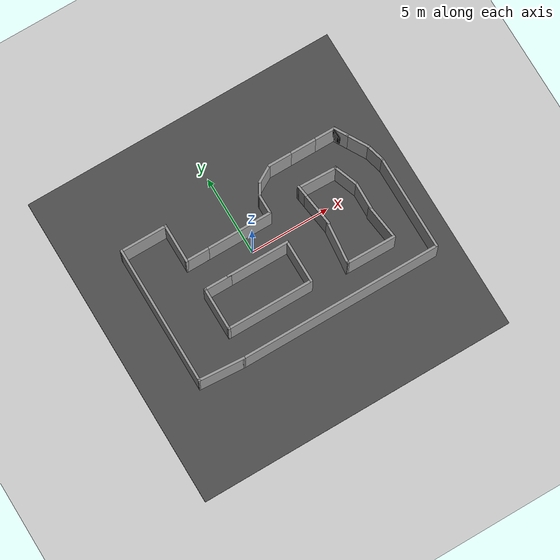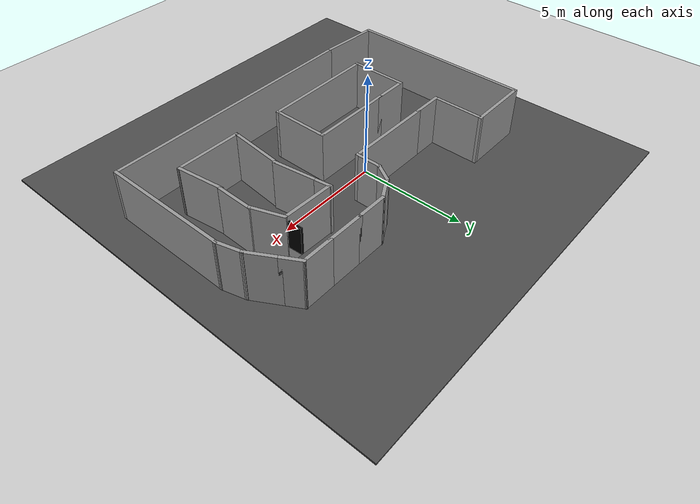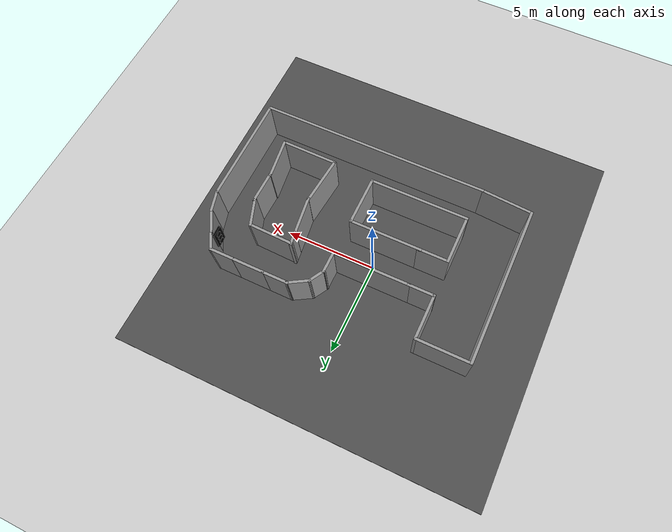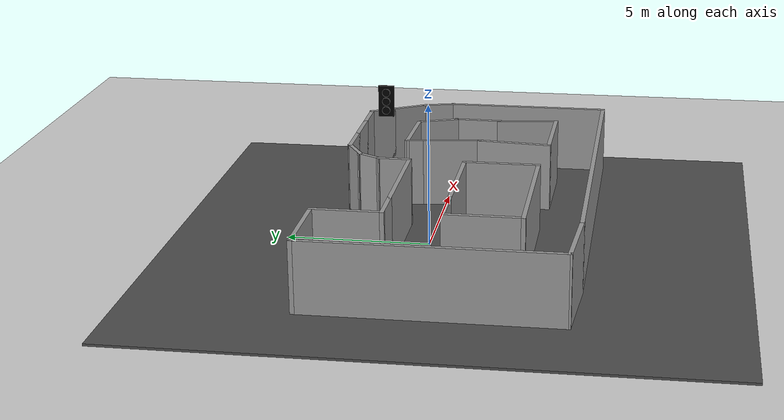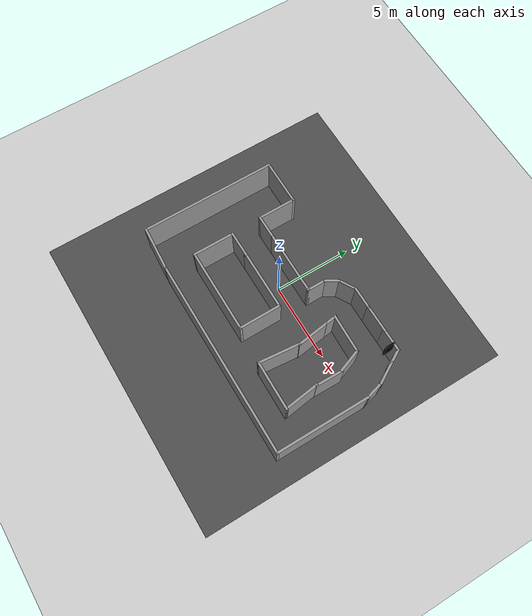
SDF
<sdf version="1.7">
 <world name="default">
  <light name="sun" type="directional">
   <pose>0 0 10 0 -0 0</pose>
   <diffuse>0.8 0.8 0.8 1</diffuse>
   <specular>0.2 0.2 0.2 1</specular>
   <attenuation>
    <range>1000</range>
    <constant>0.9</constant>
    <linear>0.01</linear>
    <quadratic>0.001</quadratic>
   </attenuation>
   <direction>-0.5 0.1 -0.9</direction>
   <spot><inner_angle>0</inner_angle><outer_angle>0</outer_angle><falloff>0</falloff></spot>
  </light>
  <model name="ground_plane">
   <static>1</static>
   <link name="link">
    <collision name="collision">
     <geometry><plane><normal>0 0 1</normal><size>100 100</size></plane></geometry>
     <surface>
      <contact><collide_bitmask>65535</collide_bitmask></contact>
      <friction><ode><mu>100</mu><mu2>50</mu2></ode></friction>
     </surface>
    </collision>
    <visual name="visual">
     <cast_shadows>0</cast_shadows>
     <geometry><plane><normal>0 0 1</normal><size>100 100</size></plane></geometry>
     <material>
      <script><uri>file://media/materials/scripts/gazebo.material</uri><name>Gazebo/Grey</name></script>
     </material>
    </visual>
   </link>
  </model>
  <gravity>0 0 -9.8</gravity>
  <magnetic_field>6e-06 2.3e-05 -4.2e-05</magnetic_field>
  <atmosphere type="adiabatic"/>
  <physics type="ode">
   <max_step_size>0.001</max_step_size>
   <real_time_factor>1</real_time_factor>
   <real_time_update_rate>1000</real_time_update_rate>
  </physics>
  <scene><ambient>0.4 0.4 0.4 1</ambient><background>0.7 0.7 0.7 1</background><shadows>1</shadows></scene>
  <spherical_coordinates>
   <surface_model>EARTH_WGS84</surface_model>
   <latitude_deg>0</latitude_deg>
   <longitude_deg>0</longitude_deg>
   <elevation>0</elevation>
   <heading_deg>0</heading_deg>
  </spherical_coordinates>
  <model name="w1">
   <pose>1.10619 -1.05888 -0 0 -0 0</pose>
   <link name="Wall_10">
    <collision name="Wall_10_Collision">
     <geometry><box><size>1.5 0.15 2.5</size></box></geometry>
     <pose>0 0 1.25 0 -0 0</pose>
    </collision>
    <visual name="Wall_10_Visual">
     <pose>0 0 1.25 0 -0 0</pose>
     <geometry><box><size>1.5 0.15 2.5</size></box></geometry>
     <material>
      <script><uri>file://media/materials/scripts/gazebo.material</uri><name>Gazebo/Grey</name></script>
      <ambient>1 1 1 1</ambient>
     </material>
     <meta><layer>0</layer></meta>
    </visual>
    <pose>2.66542 4.39754 0 0 -0 0</pose>
   </link>
   <link name="Wall_11">
    <collision name="Wall_11_Collision">
     <geometry><box><size>1.75 0.15 2.5</size></box></geometry>
     <pose>0 0 1.25 0 -0 0</pose>
    </collision>
    <visual name="Wall_11_Visual">
     <pose>0 0 1.25 0 -0 0</pose>
     <geometry><box><size>1.75 0.15 2.5</size></box></geometry>
     <material>
      <script><uri>file://media/materials/scripts/gazebo.material</uri><name>Gazebo/Grey</name></script>
      <ambient>1 1 1 1</ambient>
     </material>
     <meta><layer>0</layer></meta>
    </visual>
    <pose>4.14042 4.39754 0 0 -0 0</pose>
   </link>
   <link name="Wall_12">
    <collision name="Wall_12_Collision">
     <geometry><box><size>1.5 0.15 2.5</size></box></geometry>
     <pose>0 0 1.25 0 -0 0</pose>
    </collision>
    <visual name="Wall_12_Visual">
     <pose>0 0 1.25 0 -0 0</pose>
     <geometry><box><size>1.5 0.15 2.5</size></box></geometry>
     <material>
      <script><uri>file://media/materials/scripts/gazebo.material</uri><name>Gazebo/Grey</name></script>
      <ambient>1 1 1 1</ambient>
     </material>
     <meta><layer>0</layer></meta>
    </visual>
    <pose>5.61542 4.39754 0 0 -0 0</pose>
   </link>
   <link name="Wall_13">
    <collision name="Wall_13_Collision">
     <geometry><box><size>1 0.15 2.5</size></box></geometry>
     <pose>0 0 1.25 0 -0 0</pose>
    </collision>
    <visual name="Wall_13_Visual">
     <pose>0 0 1.25 0 -0 0</pose>
     <geometry><box><size>1 0.15 2.5</size></box></geometry>
     <material>
      <script><uri>file://media/materials/scripts/gazebo.material</uri><name>Gazebo/Grey</name></script>
      <ambient>1 1 1 1</ambient>
     </material>
     <meta><layer>0</layer></meta>
    </visual>
    <pose>6.50291 4.02948 0 0 -0 -1.0472</pose>
   </link>
   <link name="Wall_14">
    <collision name="Wall_14_Collision">
     <geometry><box><size>1.5 0.15 2.5</size></box></geometry>
     <pose>0 0 1.25 0 -0 0</pose>
    </collision>
    <visual name="Wall_14_Visual">
     <pose>0 0 1.25 0 -0 0</pose>
     <geometry><box><size>1.5 0.15 2.5</size></box></geometry>
     <material>
      <script><uri>file://media/materials/scripts/gazebo.material</uri><name>Gazebo/Grey</name></script>
      <ambient>1 1 1 1</ambient>
     </material>
     <meta><layer>0</layer></meta>
    </visual>
    <pose>7.05291 3.07685 0 0 -0 -1.0472</pose>
   </link>
   <link name="Wall_15">
    <collision name="Wall_15_Collision">
     <geometry><box><size>1.25 0.15 2.5</size></box></geometry>
     <pose>0 0 1.25 0 -0 0</pose>
    </collision>
    <visual name="Wall_15_Visual">
     <pose>0 0 1.25 0 -0 0</pose>
     <geometry><box><size>1.25 0.15 2.5</size></box></geometry>
     <material>
      <script><uri>file://media/materials/scripts/gazebo.material</uri><name>Gazebo/Grey</name></script>
      <ambient>1 1 1 1</ambient>
     </material>
     <meta><layer>0</layer></meta>
    </visual>
    <pose>7.53277 1.96103 0 0 -0 -1.309</pose>
   </link>
   <link name="Wall_2">
    <collision name="Wall_2_Collision">
     <geometry><box><size>4 0.15 2.5</size></box></geometry>
     <pose>0 0 1.25 0 -0 0</pose>
    </collision>
    <visual name="Wall_2_Visual">
     <pose>0 0 1.25 0 -0 0</pose>
     <geometry><box><size>4 0.15 2.5</size></box></geometry>
     <material>
      <script><uri>file://media/materials/scripts/gazebo.material</uri><name>Gazebo/Grey</name></script>
      <ambient>1 1 1 1</ambient>
     </material>
     <meta><layer>0</layer></meta>
    </visual>
    <pose>-1.34808 0.053645 0 0 -0 0</pose>
   </link>
   <link name="Wall_20">
    <collision name="Wall_20_Collision">
     <geometry><box><size>0.796947 0.15 2.5</size></box></geometry>
     <pose>0 0 1.25 0 -0 0</pose>
    </collision>
    <visual name="Wall_20_Visual">
     <pose>0 0 1.25 0 -0 0</pose>
     <geometry><box><size>0.796947 0.15 2.5</size></box></geometry>
     <material>
      <script><uri>file://media/materials/scripts/gazebo.material</uri><name>Gazebo/Grey</name></script>
      <ambient>1 1 1 1</ambient>
     </material>
     <meta><layer>0</layer></meta>
    </visual>
    <pose>2.83084 2.14825 0 0 -0 1.70948</pose>
   </link>
   <link name="Wall_21">
    <collision name="Wall_21_Collision">
     <geometry><box><size>2.48605 0.15 2.5</size></box></geometry>
     <pose>0 0 1.25 0 -0 0</pose>
    </collision>
    <visual name="Wall_21_Visual">
     <pose>0 0 1.25 0 -0 0</pose>
     <geometry><box><size>2.48605 0.15 2.5</size></box></geometry>
     <material>
      <script><uri>file://media/materials/scripts/gazebo.material</uri><name>Gazebo/Grey</name></script>
      <ambient>1 1 1 1</ambient>
     </material>
     <meta><layer>0</layer></meta>
    </visual>
    <pose>3.95375 2.40743 0 0 -0 -0.026193</pose>
   </link>
   <link name="Wall_22">
    <collision name="Wall_22_Collision">
     <geometry><box><size>1.59232 0.15 2.5</size></box></geometry>
     <pose>0 0 1.25 0 -0 0</pose>
    </collision>
    <visual name="Wall_22_Visual">
     <pose>0 0 1.25 0 -0 0</pose>
     <geometry><box><size>1.59232 0.15 2.5</size></box></geometry>
     <material>
      <script><uri>file://media/materials/scripts/gazebo.material</uri><name>Gazebo/Grey</name></script>
      <ambient>1 1 1 1</ambient>
     </material>
     <meta><layer>0</layer></meta>
    </visual>
    <pose>5.39901 1.69932 0 0 -0 -1.22114</pose>
   </link>
   <link name="Wall_23">
    <collision name="Wall_23_Collision">
     <geometry><box><size>1.78615 0.15 2.5</size></box></geometry>
     <pose>0 0 1.25 0 -0 0</pose>
    </collision>
    <visual name="Wall_23_Visual">
     <pose>0 0 1.25 0 -0 0</pose>
     <geometry><box><size>1.78615 0.15 2.5</size></box></geometry>
     <material>
      <script><uri>file://media/materials/scripts/gazebo.material</uri><name>Gazebo/Grey</name></script>
      <ambient>1 1 1 1</ambient>
     </material>
     <meta><layer>0</layer></meta>
    </visual>
    <pose>5.66135 0.203859 0 0 -0 -1.58949</pose>
   </link>
   <link name="Wall_24">
    <collision name="Wall_24_Collision">
     <geometry><box><size>2.26797 0.15 2.5</size></box></geometry>
     <pose>0 0 1.25 0 -0 0</pose>
    </collision>
    <visual name="Wall_24_Visual">
     <pose>0 0 1.25 0 -0 0</pose>
     <geometry><box><size>2.26797 0.15 2.5</size></box></geometry>
     <material>
      <script><uri>file://media/materials/scripts/gazebo.material</uri><name>Gazebo/Grey</name></script>
      <ambient>1 1 1 1</ambient>
     </material>
     <meta><layer>0</layer></meta>
    </visual>
    <pose>5.75312 -1.66407 0 0 -0 -1.44044</pose>
   </link>
   <link name="Wall_26">
    <collision name="Wall_26_Collision">
     <geometry><box><size>6 0.15 2.5</size></box></geometry>
     <pose>0 0 1.25 0 -0 0</pose>
    </collision>
    <visual name="Wall_26_Visual">
     <pose>0 0 1.25 0 -0 0</pose>
     <geometry><box><size>6 0.15 2.5</size></box></geometry>
     <material>
      <script><uri>file://media/materials/scripts/gazebo.material</uri><name>Gazebo/Grey</name></script>
      <ambient>1 1 1 1</ambient>
     </material>
     <meta><layer>0</layer></meta>
    </visual>
    <pose>7.67512 -1.49523 0 0 -0 -1.5708</pose>
   </link>
   <link name="Wall_27">
    <collision name="Wall_27_Collision">
     <geometry><box><size>12.75 0.15 2.5</size></box></geometry>
     <pose>0 0 1.25 0 -0 0</pose>
    </collision>
    <visual name="Wall_27_Visual">
     <pose>0 0 1.25 0 -0 0</pose>
     <geometry><box><size>12.75 0.15 2.5</size></box></geometry>
     <material>
      <script><uri>file://media/materials/scripts/gazebo.material</uri><name>Gazebo/Grey</name></script>
      <ambient>1 1 1 1</ambient>
     </material>
     <meta><layer>0</layer></meta>
    </visual>
    <pose>1.37512 -4.42023 0 0 -0 3.14159</pose>
   </link>
   <link name="Wall_31">
    <collision name="Wall_31_Collision">
     <geometry><box><size>3.13835 0.15 2.5</size></box></geometry>
     <pose>0 0 1.25 0 -0 0</pose>
    </collision>
    <visual name="Wall_31_Visual">
     <pose>0 0 1.25 0 -0 0</pose>
     <geometry><box><size>3.13835 0.15 2.5</size></box></geometry>
     <material>
      <script><uri>file://media/materials/scripts/gazebo.material</uri><name>Gazebo/Grey</name></script>
      <ambient>1 1 1 1</ambient>
     </material>
     <meta><layer>0</layer></meta>
    </visual>
    <pose>4.39668 -2.72937 0 0 -0 3.13136</pose>
   </link>
   <link name="Wall_32">
    <collision name="Wall_32_Collision">
     <geometry><box><size>2.70059 0.15 2.5</size></box></geometry>
     <pose>0 0 1.25 0 -0 0</pose>
    </collision>
    <visual name="Wall_32_Visual">
     <pose>0 0 1.25 0 -0 0</pose>
     <geometry><box><size>2.70059 0.15 2.5</size></box></geometry>
     <material>
      <script><uri>file://media/materials/scripts/gazebo.material</uri><name>Gazebo/Grey</name></script>
      <ambient>1 1 1 1</ambient>
     </material>
     <meta><layer>0</layer></meta>
    </visual>
    <pose>2.99435 -1.44467 0 0 -0 1.4747</pose>
   </link>
   <link name="Wall_36">
    <collision name="Wall_36_Collision">
     <geometry><box><size>2.75 0.15 2.5</size></box></geometry>
     <pose>0 0 1.25 0 -0 0</pose>
    </collision>
    <visual name="Wall_36_Visual">
     <pose>0 0 1.25 0 -0 0</pose>
     <geometry><box><size>2.75 0.15 2.5</size></box></geometry>
     <material>
      <script><uri>file://media/materials/scripts/gazebo.material</uri><name>Gazebo/Grey</name></script>
      <ambient>1 1 1 1</ambient>
     </material>
     <meta><layer>0</layer></meta>
    </visual>
    <pose>0.576919 -1.24636 0 0 -0 -1.5708</pose>
   </link>
   <link name="Wall_37">
    <collision name="Wall_37_Collision">
     <geometry><box><size>5.5 0.15 2.5</size></box></geometry>
     <pose>0 0 1.25 0 -0 0</pose>
    </collision>
    <visual name="Wall_37_Visual">
     <pose>0 0 1.25 0 -0 0</pose>
     <geometry><box><size>5.5 0.15 2.5</size></box></geometry>
     <material>
      <script><uri>file://media/materials/scripts/gazebo.material</uri><name>Gazebo/Grey</name></script>
      <ambient>1 1 1 1</ambient>
     </material>
     <meta><layer>0</layer></meta>
    </visual>
    <pose>-2.09808 -2.54636 0 0 -0 3.14159</pose>
   </link>
   <link name="Wall_38">
    <collision name="Wall_38_Collision">
     <geometry><box><size>2.75 0.15 2.5</size></box></geometry>
     <pose>0 0 1.25 0 -0 0</pose>
    </collision>
    <visual name="Wall_38_Visual">
     <pose>0 0 1.25 0 -0 0</pose>
     <geometry><box><size>2.75 0.15 2.5</size></box></geometry>
     <material>
      <script><uri>file://media/materials/scripts/gazebo.material</uri><name>Gazebo/Grey</name></script>
      <ambient>1 1 1 1</ambient>
     </material>
     <meta><layer>0</layer></meta>
    </visual>
    <pose>-4.77308 -1.24636 0 0 -0 1.5708</pose>
   </link>
   <link name="Wall_39">
    <collision name="Wall_39_Collision">
     <geometry><box><size>1.75 0.15 2.5</size></box></geometry>
     <pose>0 0 1.25 0 -0 0</pose>
    </collision>
    <visual name="Wall_39_Visual">
     <pose>0 0 1.25 0 -0 0</pose>
     <geometry><box><size>1.75 0.15 2.5</size></box></geometry>
     <material>
      <script><uri>file://media/materials/scripts/gazebo.material</uri><name>Gazebo/Grey</name></script>
      <ambient>1 1 1 1</ambient>
     </material>
     <meta><layer>0</layer></meta>
    </visual>
    <pose>-3.97308 0.053645 0 0 -0 0</pose>
   </link>
   <link name="Wall_41">
    <collision name="Wall_41_Collision">
     <geometry><box><size>1.5 0.15 2.5</size></box></geometry>
     <pose>0 0 1.25 0 -0 0</pose>
    </collision>
    <visual name="Wall_41_Visual">
     <pose>0 0 1.25 0 -0 0</pose>
     <geometry><box><size>1.5 0.15 2.5</size></box></geometry>
     <material>
      <script><uri>file://media/materials/scripts/gazebo.material</uri><name>Gazebo/Grey</name></script>
      <ambient>1 1 1 1</ambient>
     </material>
     <meta><layer>0</layer></meta>
    </visual>
    <pose>-4.16221 2.01142 0 0 -0 3.14159</pose>
   </link>
   <link name="Wall_42">
    <collision name="Wall_42_Collision">
     <geometry><box><size>2.5 0.15 2.5</size></box></geometry>
     <pose>0 0 1.25 0 -0 0</pose>
    </collision>
    <visual name="Wall_42_Visual">
     <pose>0 0 1.25 0 -0 0</pose>
     <geometry><box><size>2.5 0.15 2.5</size></box></geometry>
     <material>
      <script><uri>file://media/materials/scripts/gazebo.material</uri><name>Gazebo/Grey</name></script>
      <ambient>1 1 1 1</ambient>
     </material>
     <meta><layer>0</layer></meta>
    </visual>
    <pose>-4.83721 3.18642 0 0 -0 1.5708</pose>
   </link>
   <link name="Wall_43">
    <collision name="Wall_43_Collision">
     <geometry><box><size>3 0.15 2.5</size></box></geometry>
     <pose>0 0 1.25 0 -0 0</pose>
    </collision>
    <visual name="Wall_43_Visual">
     <pose>0 0 1.25 0 -0 0</pose>
     <geometry><box><size>3 0.15 2.5</size></box></geometry>
     <material>
      <script><uri>file://media/materials/scripts/gazebo.material</uri><name>Gazebo/Grey</name></script>
      <ambient>1 1 1 1</ambient>
     </material>
     <meta><layer>0</layer></meta>
    </visual>
    <pose>-6.26221 4.36142 0 0 -0 3.14159</pose>
   </link>
   <link name="Wall_44">
    <collision name="Wall_44_Collision">
     <geometry><box><size>8.75 0.15 2.5</size></box></geometry>
     <pose>0 0 1.25 0 -0 0</pose>
    </collision>
    <visual name="Wall_44_Visual">
     <pose>0 0 1.25 0 -0 0</pose>
     <geometry><box><size>8.75 0.15 2.5</size></box></geometry>
     <material>
      <script><uri>file://media/materials/scripts/gazebo.material</uri><name>Gazebo/Grey</name></script>
      <ambient>1 1 1 1</ambient>
     </material>
     <meta><layer>0</layer></meta>
    </visual>
    <pose>-7.68721 0.061419 0 0 -0 -1.5708</pose>
   </link>
   <link name="Wall_45">
    <collision name="Wall_45_Collision">
     <geometry><box><size>2.9183 0.15 2.5</size></box></geometry>
     <pose>0 0 1.25 0 -0 0</pose>
    </collision>
    <visual name="Wall_45_Visual">
     <pose>0 0 1.25 0 -0 0</pose>
     <geometry><box><size>2.9183 0.15 2.5</size></box></geometry>
     <material>
      <script><uri>file://media/materials/scripts/gazebo.material</uri><name>Gazebo/Grey</name></script>
      <ambient>1 1 1 1</ambient>
     </material>
     <meta><layer>0</layer></meta>
    </visual>
    <pose>-6.30605 -4.32941 0 0 -0 -0.065666</pose>
   </link>
   <link name="Wall_47">
    <collision name="Wall_47_Collision">
     <geometry><box><size>2.14118 0.15 2.5</size></box></geometry>
     <pose>0 0 1.25 0 -0 0</pose>
    </collision>
    <visual name="Wall_47_Visual">
     <pose>0 0 1.25 0 -0 0</pose>
     <geometry><box><size>2.14118 0.15 2.5</size></box></geometry>
     <material>
      <script><uri>file://media/materials/scripts/gazebo.material</uri><name>Gazebo/Grey</name></script>
      <ambient>1 1 1 1</ambient>
     </material>
     <meta><layer>0</layer></meta>
    </visual>
    <pose>3.01143 0.811016 0 0 -0 -1.43389</pose>
   </link>
   <link name="Wall_6">
    <collision name="Wall_6_Collision">
     <geometry><box><size>4.25 0.15 2.5</size></box></geometry>
     <pose>0 0 1.25 0 -0 0</pose>
    </collision>
    <visual name="Wall_6_Visual">
     <pose>0 0 1.25 0 -0 0</pose>
     <geometry><box><size>4.25 0.15 2.5</size></box></geometry>
     <material>
      <script><uri>file://media/materials/scripts/gazebo.material</uri><name>Gazebo/Grey</name></script>
      <ambient>1 1 1 1</ambient>
     </material>
     <meta><layer>0</layer></meta>
    </visual>
    <pose>-1.43721 2.01142 0 0 -0 0</pose>
   </link>
   <link name="Wall_7">
    <collision name="Wall_7_Collision">
     <geometry><box><size>1.25 0.15 2.5</size></box></geometry>
     <pose>0 0 1.25 0 -0 0</pose>
    </collision>
    <visual name="Wall_7_Visual">
     <pose>0 0 1.25 0 -0 0</pose>
     <geometry><box><size>1.25 0.15 2.5</size></box></geometry>
     <material>
      <script><uri>file://media/materials/scripts/gazebo.material</uri><name>Gazebo/Grey</name></script>
      <ambient>1 1 1 1</ambient>
     </material>
     <meta><layer>0</layer></meta>
    </visual>
    <pose>0.612788 2.56142 0 0 -0 1.5708</pose>
   </link>
   <link name="Wall_8">
    <collision name="Wall_8_Collision">
     <geometry><box><size>1 0.15 2.5</size></box></geometry>
     <pose>0 0 1.25 0 -0 0</pose>
    </collision>
    <visual name="Wall_8_Visual">
     <pose>0 0 1.25 0 -0 0</pose>
     <geometry><box><size>1 0.15 2.5</size></box></geometry>
     <material>
      <script><uri>file://media/materials/scripts/gazebo.material</uri><name>Gazebo/Grey</name></script>
      <ambient>1 1 1 1</ambient>
     </material>
     <meta><layer>0</layer></meta>
    </visual>
    <pose>0.825288 3.47948 0 0 -0 1.0472</pose>
   </link>
   <link name="Wall_9">
    <collision name="Wall_9_Collision">
     <geometry><box><size>1.25 0.15 2.5</size></box></geometry>
     <pose>0 0 1.25 0 -0 0</pose>
    </collision>
    <visual name="Wall_9_Visual">
     <pose>0 0 1.25 0 -0 0</pose>
     <geometry><box><size>1.25 0.15 2.5</size></box></geometry>
     <material>
      <script><uri>file://media/materials/scripts/gazebo.material</uri><name>Gazebo/Grey</name></script>
      <ambient>1 1 1 1</ambient>
     </material>
     <meta><layer>0</layer></meta>
    </visual>
    <pose>1.5141 4.12254 0 0 -0 0.523599</pose>
   </link>
   <static>1</static>
  </model>
  <model name="asphalt_plane">
   <static>1</static>
   <link name="link">
    <collision name="collision"><geometry><box><size>20 20 0.1</size></box></geometry></collision>
    <visual name="visual">
     <cast_shadows>0</cast_shadows>
     <geometry><box><size>20 20 0.1</size></box></geometry>
     <material>
      <script>
       <uri>model://asphalt_plane/materials/scripts</uri>
       <uri>model://asphalt_plane/materials/textures</uri>
       <name>vrc/asphalt</name>
      </script>
     </material>
    </visual>
   </link>
   <pose>0.382459 -1.00163 0 0 -0 0</pose>
  </model>
  <model name="gazebo_traffic_light">
   <plugin name="traffic_light_plugin" filename="libgazebo_traffic_light.so"/>
   <static>0</static>
   <link name="light_fixture">
    <gravity>0</gravity>
    <visual name="visual">
     <pose>0 0 0.535 0 -0 0</pose>
     <geometry><box><size>0.1 0.6 1.2</size></box></geometry>
     <material><ambient>0 0 0 1</ambient><diffuse>0 0 0 1</diffuse><specular>0 0 0 1</specular></material>
    </visual>
    <collision name="collision">
     <pose>0 0 0.535 0 -0 0</pose>
     <geometry><box><size>0.1 0.6 1.2</size></box></geometry>
    </collision>
    <inertial>
     <inertia><ixx>1</ixx><ixy>0</ixy><ixz>0</ixz><iyy>1</iyy><iyz>0</iyz><izz>1</izz></inertia>
     <mass>1</mass>
    </inertial>
   </link>
   <link name="green_off">
    <gravity>0</gravity>
    <pose>0.075 0 0.175 0 1.5707 0</pose>
    <collision name="collision">
     <geometry><cylinder><radius>0.15</radius><length>0.05</length></cylinder></geometry>
    </collision>
    <visual name="visual">
     <geometry><cylinder><radius>0.15</radius><length>0.05</length></cylinder></geometry>
     <material>
      <ambient>0 1 0 1</ambient>
      <diffuse>0 0 0 1</diffuse>
      <specular>0 0 0 1</specular>
      <emissive>0 0 0 1</emissive>
     </material>
    </visual>
    <inertial>
     <inertia><ixx>1</ixx><ixy>0</ixy><ixz>0</ixz><iyy>1</iyy><iyz>0</iyz><izz>1</izz></inertia>
     <mass>1</mass>
    </inertial>
   </link>
   <link name="green_on">
    <gravity>0</gravity>
    <pose>0 0 0.175 0 1.5707 0</pose>
    <collision name="collision">
     <geometry><cylinder><radius>0.15</radius><length>0.002</length></cylinder></geometry>
    </collision>
    <visual name="visual">
     <geometry><cylinder><radius>0.15</radius><length>0.002</length></cylinder></geometry>
     <material>
      <ambient>0 0 0 1</ambient>
      <diffuse>0 0 0 1</diffuse>
      <specular>0 0 0 1</specular>
      <emissive>0 1 0 1</emissive>
     </material>
    </visual>
    <inertial>
     <inertia><ixx>1</ixx><ixy>0</ixy><ixz>0</ixz><iyy>1</iyy><iyz>0</iyz><izz>1</izz></inertia>
     <mass>1</mass>
    </inertial>
   </link>
   <link name="yellow_off">
    <gravity>0</gravity>
    <pose>0.075 0 0.525 0 1.5707 0</pose>
    <collision name="collision">
     <geometry><cylinder><radius>0.15</radius><length>0.05</length></cylinder></geometry>
    </collision>
    <visual name="visual">
     <geometry><cylinder><radius>0.15</radius><length>0.05</length></cylinder></geometry>
     <material>
      <ambient>1 1 0 1</ambient>
      <diffuse>0 0 0 1</diffuse>
      <specular>0 0 0 1</specular>
      <emissive>0 0 0 1</emissive>
     </material>
    </visual>
    <inertial>
     <inertia><ixx>1</ixx><ixy>0</ixy><ixz>0</ixz><iyy>1</iyy><iyz>0</iyz><izz>1</izz></inertia>
     <mass>1</mass>
    </inertial>
   </link>
   <link name="yellow_on">
    <gravity>0</gravity>
    <pose>0 0 0.525 0 1.5707 0</pose>
    <collision name="collision">
     <geometry><cylinder><radius>0.15</radius><length>0.002</length></cylinder></geometry>
    </collision>
    <visual name="visual">
     <geometry><cylinder><radius>0.15</radius><length>0.002</length></cylinder></geometry>
     <material>
      <ambient>0 0 0 1</ambient>
      <diffuse>0 0 0 1</diffuse>
      <specular>0 0 0 1</specular>
      <emissive>1 1 0 1</emissive>
     </material>
    </visual>
    <inertial>
     <inertia><ixx>1</ixx><ixy>0</ixy><ixz>0</ixz><iyy>1</iyy><iyz>0</iyz><izz>1</izz></inertia>
     <mass>1</mass>
    </inertial>
   </link>
   <link name="red_off">
    <gravity>0</gravity>
    <pose>0.075 0 0.875 0 1.5707 0</pose>
    <collision name="collision">
     <geometry><cylinder><radius>0.15</radius><length>0.05</length></cylinder></geometry>
    </collision>
    <visual name="visual">
     <geometry><cylinder><radius>0.15</radius><length>0.05</length></cylinder></geometry>
     <material>
      <ambient>1 0 0 1</ambient>
      <diffuse>0 0 0 1</diffuse>
      <specular>0 0 0 1</specular>
      <emissive>0 0 0 1</emissive>
     </material>
    </visual>
    <inertial>
     <inertia><ixx>1</ixx><ixy>0</ixy><ixz>0</ixz><iyy>1</iyy><iyz>0</iyz><izz>1</izz></inertia>
     <mass>1</mass>
    </inertial>
   </link>
   <link name="red_on">
    <gravity>0</gravity>
    <pose>0 0 0.875 0 1.5707 0</pose>
    <collision name="collision">
     <geometry><cylinder><radius>0.15</radius><length>0.002</length></cylinder></geometry>
    </collision>
    <visual name="visual">
     <geometry><cylinder><radius>0.15</radius><length>0.002</length></cylinder></geometry>
     <material>
      <ambient>0 0 0 1</ambient>
      <diffuse>0 0 0 1</diffuse>
      <specular>0 0 0 1</specular>
      <emissive>1 0 0 1</emissive>
     </material>
    </visual>
    <inertial>
     <inertia><ixx>1</ixx><ixy>0</ixy><ixz>0</ixz><iyy>1</iyy><iyz>0</iyz><izz>1</izz></inertia>
     <mass>1</mass>
    </inertial>
   </link>
   <joint name="green_switch" type="prismatic">
    <parent>green_off</parent>
    <child>green_on</child>
    <axis>
     <xyz>0 0 1</xyz>
     <limit><lower>0</lower><upper>0.101</upper></limit>
     <dynamics><spring_reference>0</spring_reference><spring_stiffness>0</spring_stiffness></dynamics>
    </axis>
   </joint>
   <joint name="green_base" type="fixed"><parent>light_fixture</parent><child>green_off</child></joint>
   <joint name="yellow_switch" type="prismatic">
    <parent>yellow_off</parent>
    <child>yellow_on</child>
    <axis>
     <xyz>0 0 1</xyz>
     <limit><lower>0</lower><upper>0.101</upper></limit>
     <dynamics><spring_reference>0</spring_reference><spring_stiffness>0</spring_stiffness></dynamics>
    </axis>
   </joint>
   <joint name="yellow_base" type="fixed"><parent>light_fixture</parent><child>yellow_off</child></joint>
   <joint name="red_switch" type="prismatic">
    <parent>red_off</parent>
    <child>red_on</child>
    <axis>
     <xyz>0 0 1</xyz>
     <limit><lower>0</lower><upper>0.101</upper></limit>
     <dynamics><spring_reference>0</spring_reference><spring_stiffness>0</spring_stiffness></dynamics>
    </axis>
   </joint>
   <joint name="red_base" type="fixed"><parent>light_fixture</parent><child>red_off</child></joint>
   <pose>7.14964 2.73486 2.46953 -0.010842 0.011866 -3.0967</pose>
  </model>
 </world>
</sdf>
